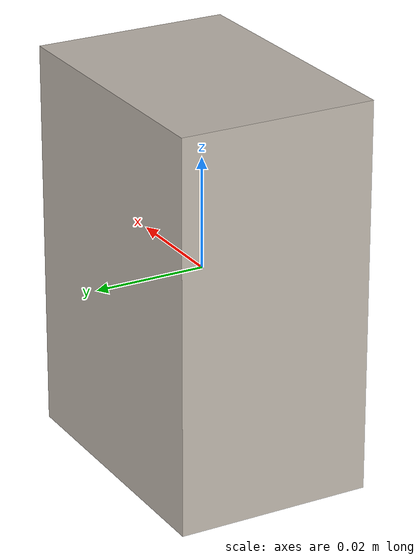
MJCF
<mujoco model="clean">
  <asset>
    <texture file="textures/boxes/clean.png" type="2d" name="tex-clean" />
    <material name="clean" reflectance="0.7" texrepeat="15 15" texture="tex-clean" texuniform="true"/>
  </asset>
  <worldbody>
    <body>
      <body name="collision">
        <geom pos="0 0 0" size="0.025 0.0175 0.035" type="box" solimp="0.998 0.998 0.001" solref="0.001 1" density="50" friction="0.95 0.3 0.1"  material="clean" group="1" condim="4"/>
      </body>

      <site rgba="0 0 0 0" size="0.005" pos="0 0 -0.045" name="bottom_site"/>
      <site rgba="0 0 0 0" size="0.005" pos="0 0 0.03" name="top_site"/>
      <site rgba="0 0 0 0" size="0.005" pos="0.06 0.06 0" name="horizontal_radius_site"/>
    </body>
  </worldbody>
</mujoco>
